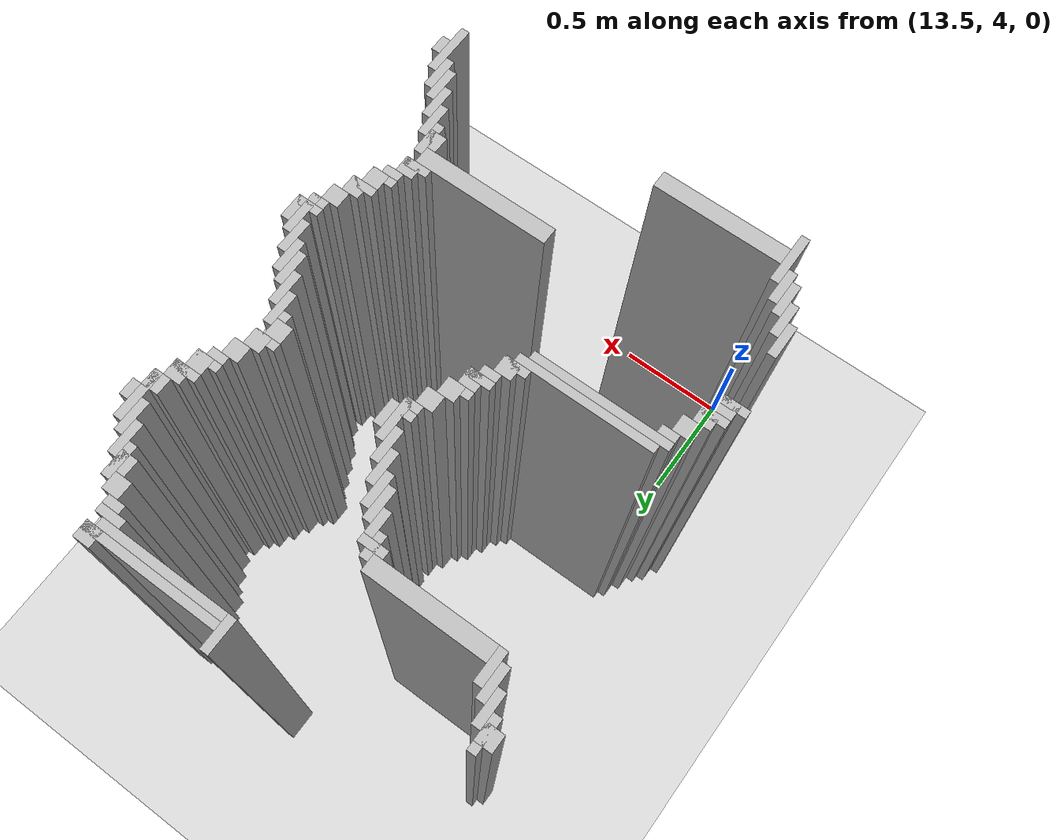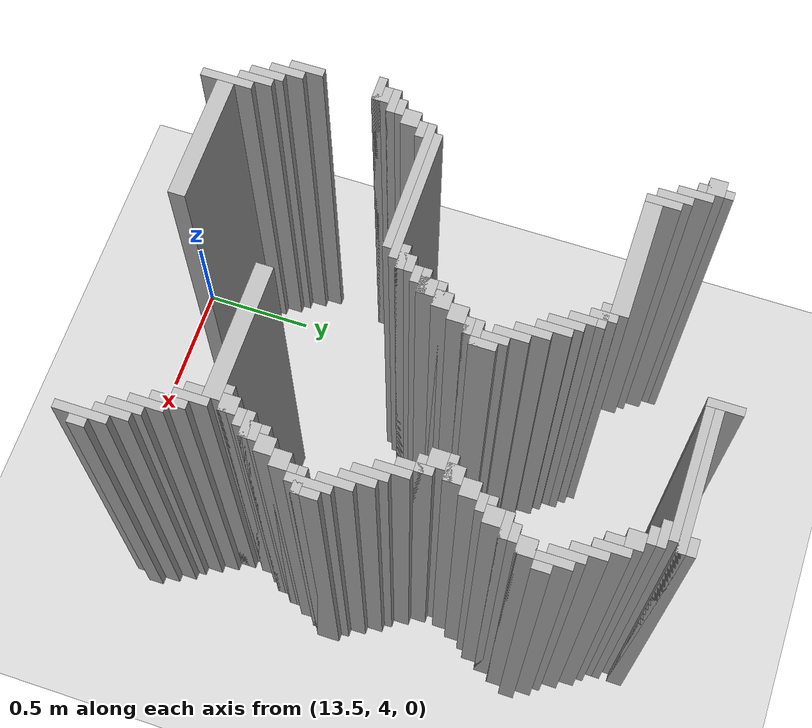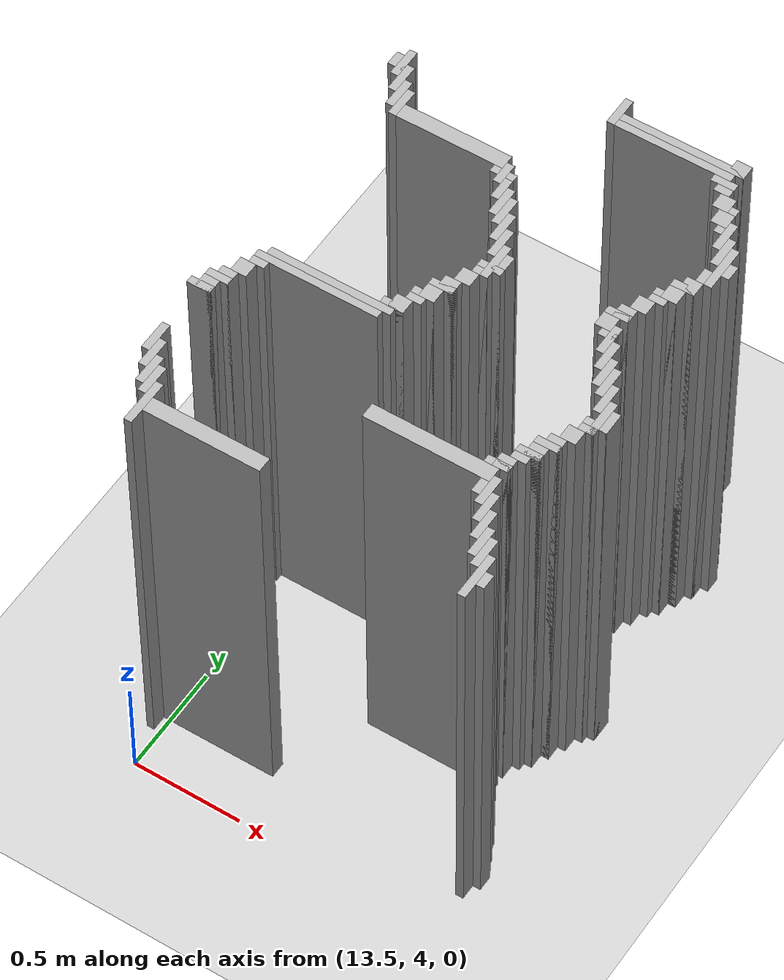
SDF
<sdf version="1.6">
 <world name="slam_world">
  <model name="ground_plane">
   <static>true</static>
   <link name="link">
    <collision name="collision">
     <geometry><plane><normal>0 0 1</normal><size>100 100</size></plane></geometry>
    </collision>
    <visual name="visual">
     <geometry><plane><normal>0 0 1</normal><size>100 100</size></plane></geometry>
     <material>
      <ambient>0.8 0.8 0.8 1</ambient>
      <diffuse>0.8 0.8 0.8 1</diffuse>
      <specular>0.8 0.8 0.8 1</specular>
     </material>
    </visual>
   </link>
  </model>
  <model name="wall_3584">
   <static>true</static>
   <pose>14.18213457076566 6.438515081206496 1.0 0 0 0</pose>
   <link name="link">
    <collision name="collision">
     <geometry><box><size>0.03480278422273782 0.13921113689095127 2.0</size></box></geometry>
    </collision>
    <visual name="visual">
     <geometry><box><size>0.03480278422273782 0.13921113689095127 2.0</size></box></geometry>
     <material><ambient>0.5 0.5 0.5 1</ambient><diffuse>0.7 0.7 0.7 1</diffuse></material>
    </visual>
   </link>
  </model>
  <model name="wall_3595">
   <static>true</static>
   <pose>14.721577726218097 6.438515081206496 1.0 0 0 0</pose>
   <link name="link">
    <collision name="collision">
     <geometry><box><size>0.06960556844547564 0.06960556844547564 2.0</size></box></geometry>
    </collision>
    <visual name="visual">
     <geometry><box><size>0.06960556844547564 0.06960556844547564 2.0</size></box></geometry>
     <material><ambient>0.5 0.5 0.5 1</ambient><diffuse>0.7 0.7 0.7 1</diffuse></material>
    </visual>
   </link>
  </model>
  <model name="wall_3609">
   <static>true</static>
   <pose>14.477958236658932 6.421113689095128 1.0 0 0 0</pose>
   <link name="link">
    <collision name="collision">
     <geometry><box><size>0.5568445475638051 0.03480278422273782 2.0</size></box></geometry>
    </collision>
    <visual name="visual">
     <geometry><box><size>0.5568445475638051 0.03480278422273782 2.0</size></box></geometry>
     <material><ambient>0.5 0.5 0.5 1</ambient><diffuse>0.7 0.7 0.7 1</diffuse></material>
    </visual>
   </link>
  </model>
  <model name="wall_3619">
   <static>true</static>
   <pose>14.460556844547563 6.386310904872389 1.0 0 0 0</pose>
   <link name="link">
    <collision name="collision">
     <geometry><box><size>0.5220417633410672 0.03480278422273782 2.0</size></box></geometry>
    </collision>
    <visual name="visual">
     <geometry><box><size>0.5220417633410672 0.03480278422273782 2.0</size></box></geometry>
     <material><ambient>0.5 0.5 0.5 1</ambient><diffuse>0.7 0.7 0.7 1</diffuse></material>
    </visual>
   </link>
  </model>
  <model name="wall_3632">
   <static>true</static>
   <pose>14.704176334106728 6.351508120649652 1.0 0 0 0</pose>
   <link name="link">
    <collision name="collision">
     <geometry><box><size>0.10440835266821345 0.03480278422273782 2.0</size></box></geometry>
    </collision>
    <visual name="visual">
     <geometry><box><size>0.10440835266821345 0.03480278422273782 2.0</size></box></geometry>
     <material><ambient>0.5 0.5 0.5 1</ambient><diffuse>0.7 0.7 0.7 1</diffuse></material>
    </visual>
   </link>
  </model>
  <model name="wall_3641">
   <static>true</static>
   <pose>14.721577726218097 6.316705336426914 1.0 0 0 0</pose>
   <link name="link">
    <collision name="collision">
     <geometry><box><size>0.06960556844547564 0.03480278422273782 2.0</size></box></geometry>
    </collision>
    <visual name="visual">
     <geometry><box><size>0.06960556844547564 0.03480278422273782 2.0</size></box></geometry>
     <material><ambient>0.5 0.5 0.5 1</ambient><diffuse>0.7 0.7 0.7 1</diffuse></material>
    </visual>
   </link>
  </model>
  <model name="wall_3654">
   <static>true</static>
   <pose>14.756380510440835 6.2645011600928076 1.0 0 0 0</pose>
   <link name="link">
    <collision name="collision">
     <geometry><box><size>0.06960556844547564 0.06960556844547564 2.0</size></box></geometry>
    </collision>
    <visual name="visual">
     <geometry><box><size>0.06960556844547564 0.06960556844547564 2.0</size></box></geometry>
     <material><ambient>0.5 0.5 0.5 1</ambient><diffuse>0.7 0.7 0.7 1</diffuse></material>
    </visual>
   </link>
  </model>
  <model name="wall_3666">
   <static>true</static>
   <pose>13.346867749419953 6.194895591647332 1.0 0 0 0</pose>
   <link name="link">
    <collision name="collision">
     <geometry><box><size>0.03480278422273782 0.13921113689095127 2.0</size></box></geometry>
    </collision>
    <visual name="visual">
     <geometry><box><size>0.03480278422273782 0.13921113689095127 2.0</size></box></geometry>
     <material><ambient>0.5 0.5 0.5 1</ambient><diffuse>0.7 0.7 0.7 1</diffuse></material>
    </visual>
   </link>
  </model>
  <model name="wall_3667">
   <static>true</static>
   <pose>14.80858468677494 6.194895591647332 1.0 0 0 0</pose>
   <link name="link">
    <collision name="collision">
     <geometry><box><size>0.03480278422273782 0.13921113689095127 2.0</size></box></geometry>
    </collision>
    <visual name="visual">
     <geometry><box><size>0.03480278422273782 0.13921113689095127 2.0</size></box></geometry>
     <material><ambient>0.5 0.5 0.5 1</ambient><diffuse>0.7 0.7 0.7 1</diffuse></material>
    </visual>
   </link>
  </model>
  <model name="wall_3679">
   <static>true</static>
   <pose>13.329466357308585 6.194895591647332 1.0 0 0 0</pose>
   <link name="link">
    <collision name="collision">
     <geometry><box><size>0.06960556844547564 0.06960556844547564 2.0</size></box></geometry>
    </collision>
    <visual name="visual">
     <geometry><box><size>0.06960556844547564 0.06960556844547564 2.0</size></box></geometry>
     <material><ambient>0.5 0.5 0.5 1</ambient><diffuse>0.7 0.7 0.7 1</diffuse></material>
    </visual>
   </link>
  </model>
  <model name="wall_3680">
   <static>true</static>
   <pose>14.791183294663572 6.194895591647332 1.0 0 0 0</pose>
   <link name="link">
    <collision name="collision">
     <geometry><box><size>0.06960556844547564 0.06960556844547564 2.0</size></box></geometry>
    </collision>
    <visual name="visual">
     <geometry><box><size>0.06960556844547564 0.06960556844547564 2.0</size></box></geometry>
     <material><ambient>0.5 0.5 0.5 1</ambient><diffuse>0.7 0.7 0.7 1</diffuse></material>
    </visual>
   </link>
  </model>
  <model name="wall_3692">
   <static>true</static>
   <pose>13.38167053364269 6.125290023201856 1.0 0 0 0</pose>
   <link name="link">
    <collision name="collision">
     <geometry><box><size>0.03480278422273782 0.13921113689095127 2.0</size></box></geometry>
    </collision>
    <visual name="visual">
     <geometry><box><size>0.03480278422273782 0.13921113689095127 2.0</size></box></geometry>
     <material><ambient>0.5 0.5 0.5 1</ambient><diffuse>0.7 0.7 0.7 1</diffuse></material>
    </visual>
   </link>
  </model>
  <model name="wall_3693">
   <static>true</static>
   <pose>14.84338747099768 6.125290023201856 1.0 0 0 0</pose>
   <link name="link">
    <collision name="collision">
     <geometry><box><size>0.03480278422273782 0.13921113689095127 2.0</size></box></geometry>
    </collision>
    <visual name="visual">
     <geometry><box><size>0.03480278422273782 0.13921113689095127 2.0</size></box></geometry>
     <material><ambient>0.5 0.5 0.5 1</ambient><diffuse>0.7 0.7 0.7 1</diffuse></material>
    </visual>
   </link>
  </model>
  <model name="wall_3710">
   <static>true</static>
   <pose>13.416473317865428 6.05568445475638 1.0 0 0 0</pose>
   <link name="link">
    <collision name="collision">
     <geometry><box><size>0.03480278422273782 0.13921113689095127 2.0</size></box></geometry>
    </collision>
    <visual name="visual">
     <geometry><box><size>0.03480278422273782 0.13921113689095127 2.0</size></box></geometry>
     <material><ambient>0.5 0.5 0.5 1</ambient><diffuse>0.7 0.7 0.7 1</diffuse></material>
    </visual>
   </link>
  </model>
  <model name="wall_3711">
   <static>true</static>
   <pose>14.878190255220417 6.05568445475638 1.0 0 0 0</pose>
   <link name="link">
    <collision name="collision">
     <geometry><box><size>0.03480278422273782 0.13921113689095127 2.0</size></box></geometry>
    </collision>
    <visual name="visual">
     <geometry><box><size>0.03480278422273782 0.13921113689095127 2.0</size></box></geometry>
     <material><ambient>0.5 0.5 0.5 1</ambient><diffuse>0.7 0.7 0.7 1</diffuse></material>
    </visual>
   </link>
  </model>
  <model name="wall_3723">
   <static>true</static>
   <pose>13.451276102088167 6.020881670533642 1.0 0 0 0</pose>
   <link name="link">
    <collision name="collision">
     <geometry><box><size>0.03480278422273782 0.13921113689095127 2.0</size></box></geometry>
    </collision>
    <visual name="visual">
     <geometry><box><size>0.03480278422273782 0.13921113689095127 2.0</size></box></geometry>
     <material><ambient>0.5 0.5 0.5 1</ambient><diffuse>0.7 0.7 0.7 1</diffuse></material>
    </visual>
   </link>
  </model>
  <model name="wall_3724">
   <static>true</static>
   <pose>14.912993039443155 5.986078886310905 1.0 0 0 0</pose>
   <link name="link">
    <collision name="collision">
     <geometry><box><size>0.03480278422273782 0.2088167053364269 2.0</size></box></geometry>
    </collision>
    <visual name="visual">
     <geometry><box><size>0.03480278422273782 0.2088167053364269 2.0</size></box></geometry>
     <material><ambient>0.5 0.5 0.5 1</ambient><diffuse>0.7 0.7 0.7 1</diffuse></material>
    </visual>
   </link>
  </model>
  <model name="wall_3740">
   <static>true</static>
   <pose>13.7122969837587 5.986078886310905 1.0 0 0 0</pose>
   <link name="link">
    <collision name="collision">
     <geometry><box><size>0.4872389791183295 0.06960556844547564 2.0</size></box></geometry>
    </collision>
    <visual name="visual">
     <geometry><box><size>0.4872389791183295 0.06960556844547564 2.0</size></box></geometry>
     <material><ambient>0.5 0.5 0.5 1</ambient><diffuse>0.7 0.7 0.7 1</diffuse></material>
    </visual>
   </link>
  </model>
  <model name="wall_3741">
   <static>true</static>
   <pose>14.947795823665892 5.986078886310905 1.0 0 0 0</pose>
   <link name="link">
    <collision name="collision">
     <geometry><box><size>0.03480278422273782 0.06960556844547564 2.0</size></box></geometry>
    </collision>
    <visual name="visual">
     <geometry><box><size>0.03480278422273782 0.06960556844547564 2.0</size></box></geometry>
     <material><ambient>0.5 0.5 0.5 1</ambient><diffuse>0.7 0.7 0.7 1</diffuse></material>
    </visual>
   </link>
  </model>
  <model name="wall_3751">
   <static>true</static>
   <pose>13.973317865429234 5.933874709976798 1.0 0 0 0</pose>
   <link name="link">
    <collision name="collision">
     <geometry><box><size>0.03480278422273782 0.10440835266821345 2.0</size></box></geometry>
    </collision>
    <visual name="visual">
     <geometry><box><size>0.03480278422273782 0.10440835266821345 2.0</size></box></geometry>
     <material><ambient>0.5 0.5 0.5 1</ambient><diffuse>0.7 0.7 0.7 1</diffuse></material>
    </visual>
   </link>
  </model>
  <model name="wall_3763">
   <static>true</static>
   <pose>13.973317865429234 5.933874709976798 1.0 0 0 0</pose>
   <link name="link">
    <collision name="collision">
     <geometry><box><size>0.10440835266821345 0.03480278422273782 2.0</size></box></geometry>
    </collision>
    <visual name="visual">
     <geometry><box><size>0.10440835266821345 0.03480278422273782 2.0</size></box></geometry>
     <material><ambient>0.5 0.5 0.5 1</ambient><diffuse>0.7 0.7 0.7 1</diffuse></material>
    </visual>
   </link>
  </model>
  <model name="wall_3764">
   <static>true</static>
   <pose>14.895591647331786 5.916473317865429 1.0 0 0 0</pose>
   <link name="link">
    <collision name="collision">
     <geometry><box><size>0.06960556844547564 0.06960556844547564 2.0</size></box></geometry>
    </collision>
    <visual name="visual">
     <geometry><box><size>0.06960556844547564 0.06960556844547564 2.0</size></box></geometry>
     <material><ambient>0.5 0.5 0.5 1</ambient><diffuse>0.7 0.7 0.7 1</diffuse></material>
    </visual>
   </link>
  </model>
  <model name="wall_3770">
   <static>true</static>
   <pose>14.008120649651971 5.864269141531322 1.0 0 0 0</pose>
   <link name="link">
    <collision name="collision">
     <geometry><box><size>0.03480278422273782 0.10440835266821345 2.0</size></box></geometry>
    </collision>
    <visual name="visual">
     <geometry><box><size>0.03480278422273782 0.10440835266821345 2.0</size></box></geometry>
     <material><ambient>0.5 0.5 0.5 1</ambient><diffuse>0.7 0.7 0.7 1</diffuse></material>
    </visual>
   </link>
  </model>
  <model name="wall_3782">
   <static>true</static>
   <pose>14.042923433874709 5.812064965197216 1.0 0 0 0</pose>
   <link name="link">
    <collision name="collision">
     <geometry><box><size>0.03480278422273782 0.13921113689095127 2.0</size></box></geometry>
    </collision>
    <visual name="visual">
     <geometry><box><size>0.03480278422273782 0.13921113689095127 2.0</size></box></geometry>
     <material><ambient>0.5 0.5 0.5 1</ambient><diffuse>0.7 0.7 0.7 1</diffuse></material>
    </visual>
   </link>
  </model>
  <model name="wall_3783">
   <static>true</static>
   <pose>14.860788863109049 5.846867749419953 1.0 0 0 0</pose>
   <link name="link">
    <collision name="collision">
     <geometry><box><size>0.06960556844547564 0.06960556844547564 2.0</size></box></geometry>
    </collision>
    <visual name="visual">
     <geometry><box><size>0.06960556844547564 0.06960556844547564 2.0</size></box></geometry>
     <material><ambient>0.5 0.5 0.5 1</ambient><diffuse>0.7 0.7 0.7 1</diffuse></material>
    </visual>
   </link>
  </model>
  <model name="wall_3795">
   <static>true</static>
   <pose>14.077726218097448 5.7772621809744775 1.0 0 0 0</pose>
   <link name="link">
    <collision name="collision">
     <geometry><box><size>0.03480278422273782 0.13921113689095127 2.0</size></box></geometry>
    </collision>
    <visual name="visual">
     <geometry><box><size>0.03480278422273782 0.13921113689095127 2.0</size></box></geometry>
     <material><ambient>0.5 0.5 0.5 1</ambient><diffuse>0.7 0.7 0.7 1</diffuse></material>
    </visual>
   </link>
  </model>
  <model name="wall_3796">
   <static>true</static>
   <pose>14.84338747099768 5.8294663573085845 1.0 0 0 0</pose>
   <link name="link">
    <collision name="collision">
     <geometry><box><size>0.10440835266821345 0.03480278422273782 2.0</size></box></geometry>
    </collision>
    <visual name="visual">
     <geometry><box><size>0.10440835266821345 0.03480278422273782 2.0</size></box></geometry>
     <material><ambient>0.5 0.5 0.5 1</ambient><diffuse>0.7 0.7 0.7 1</diffuse></material>
    </visual>
   </link>
  </model>
  <model name="wall_3808">
   <static>true</static>
   <pose>14.825986078886311 5.7772621809744775 1.0 0 0 0</pose>
   <link name="link">
    <collision name="collision">
     <geometry><box><size>0.06960556844547564 0.06960556844547564 2.0</size></box></geometry>
    </collision>
    <visual name="visual">
     <geometry><box><size>0.06960556844547564 0.06960556844547564 2.0</size></box></geometry>
     <material><ambient>0.5 0.5 0.5 1</ambient><diffuse>0.7 0.7 0.7 1</diffuse></material>
    </visual>
   </link>
  </model>
  <model name="wall_3820">
   <static>true</static>
   <pose>14.112529002320185 5.707656612529002 1.0 0 0 0</pose>
   <link name="link">
    <collision name="collision">
     <geometry><box><size>0.03480278422273782 0.13921113689095127 2.0</size></box></geometry>
    </collision>
    <visual name="visual">
     <geometry><box><size>0.03480278422273782 0.13921113689095127 2.0</size></box></geometry>
     <material><ambient>0.5 0.5 0.5 1</ambient><diffuse>0.7 0.7 0.7 1</diffuse></material>
    </visual>
   </link>
  </model>
  <model name="wall_3821">
   <static>true</static>
   <pose>14.80858468677494 5.759860788863109 1.0 0 0 0</pose>
   <link name="link">
    <collision name="collision">
     <geometry><box><size>0.10440835266821345 0.03480278422273782 2.0</size></box></geometry>
    </collision>
    <visual name="visual">
     <geometry><box><size>0.10440835266821345 0.03480278422273782 2.0</size></box></geometry>
     <material><ambient>0.5 0.5 0.5 1</ambient><diffuse>0.7 0.7 0.7 1</diffuse></material>
    </visual>
   </link>
  </model>
  <model name="wall_3827">
   <static>true</static>
   <pose>14.791183294663572 5.725058004640371 1.0 0 0 0</pose>
   <link name="link">
    <collision name="collision">
     <geometry><box><size>0.06960556844547564 0.03480278422273782 2.0</size></box></geometry>
    </collision>
    <visual name="visual">
     <geometry><box><size>0.06960556844547564 0.03480278422273782 2.0</size></box></geometry>
     <material><ambient>0.5 0.5 0.5 1</ambient><diffuse>0.7 0.7 0.7 1</diffuse></material>
    </visual>
   </link>
  </model>
  <model name="wall_3839">
   <static>true</static>
   <pose>14.147331786542923 5.638051044083526 1.0 0 0 0</pose>
   <link name="link">
    <collision name="collision">
     <geometry><box><size>0.03480278422273782 0.13921113689095127 2.0</size></box></geometry>
    </collision>
    <visual name="visual">
     <geometry><box><size>0.03480278422273782 0.13921113689095127 2.0</size></box></geometry>
     <material><ambient>0.5 0.5 0.5 1</ambient><diffuse>0.7 0.7 0.7 1</diffuse></material>
    </visual>
   </link>
  </model>
  <model name="wall_3840">
   <static>true</static>
   <pose>14.756380510440835 5.672853828306264 1.0 0 0 0</pose>
   <link name="link">
    <collision name="collision">
     <geometry><box><size>0.06960556844547564 0.06960556844547564 2.0</size></box></geometry>
    </collision>
    <visual name="visual">
     <geometry><box><size>0.06960556844547564 0.06960556844547564 2.0</size></box></geometry>
     <material><ambient>0.5 0.5 0.5 1</ambient><diffuse>0.7 0.7 0.7 1</diffuse></material>
    </visual>
   </link>
  </model>
  <model name="wall_3852">
   <static>true</static>
   <pose>14.18213457076566 5.551044083526682 1.0 0 0 0</pose>
   <link name="link">
    <collision name="collision">
     <geometry><box><size>0.03480278422273782 0.17401392111368907 2.0</size></box></geometry>
    </collision>
    <visual name="visual">
     <geometry><box><size>0.03480278422273782 0.17401392111368907 2.0</size></box></geometry>
     <material><ambient>0.5 0.5 0.5 1</ambient><diffuse>0.7 0.7 0.7 1</diffuse></material>
    </visual>
   </link>
  </model>
  <model name="wall_3853">
   <static>true</static>
   <pose>14.721577726218097 5.603248259860789 1.0 0 0 0</pose>
   <link name="link">
    <collision name="collision">
     <geometry><box><size>0.06960556844547564 0.06960556844547564 2.0</size></box></geometry>
    </collision>
    <visual name="visual">
     <geometry><box><size>0.06960556844547564 0.06960556844547564 2.0</size></box></geometry>
     <material><ambient>0.5 0.5 0.5 1</ambient><diffuse>0.7 0.7 0.7 1</diffuse></material>
    </visual>
   </link>
  </model>
  <model name="wall_3866">
   <static>true</static>
   <pose>14.2169373549884 5.551044083526682 1.0 0 0 0</pose>
   <link name="link">
    <collision name="collision">
     <geometry><box><size>0.03480278422273782 0.10440835266821345 2.0</size></box></geometry>
    </collision>
    <visual name="visual">
     <geometry><box><size>0.03480278422273782 0.10440835266821345 2.0</size></box></geometry>
     <material><ambient>0.5 0.5 0.5 1</ambient><diffuse>0.7 0.7 0.7 1</diffuse></material>
    </visual>
   </link>
  </model>
  <model name="wall_3867">
   <static>true</static>
   <pose>14.704176334106728 5.58584686774942 1.0 0 0 0</pose>
   <link name="link">
    <collision name="collision">
     <geometry><box><size>0.10440835266821345 0.03480278422273782 2.0</size></box></geometry>
    </collision>
    <visual name="visual">
     <geometry><box><size>0.10440835266821345 0.03480278422273782 2.0</size></box></geometry>
     <material><ambient>0.5 0.5 0.5 1</ambient><diffuse>0.7 0.7 0.7 1</diffuse></material>
    </visual>
   </link>
  </model>
  <model name="wall_3878">
   <static>true</static>
   <pose>14.68677494199536 5.533642691415313 1.0 0 0 0</pose>
   <link name="link">
    <collision name="collision">
     <geometry><box><size>0.06960556844547564 0.06960556844547564 2.0</size></box></geometry>
    </collision>
    <visual name="visual">
     <geometry><box><size>0.06960556844547564 0.06960556844547564 2.0</size></box></geometry>
     <material><ambient>0.5 0.5 0.5 1</ambient><diffuse>0.7 0.7 0.7 1</diffuse></material>
    </visual>
   </link>
  </model>
  <model name="wall_3892">
   <static>true</static>
   <pose>14.18213457076566 5.516241299303944 1.0 0 0 0</pose>
   <link name="link">
    <collision name="collision">
     <geometry><box><size>0.10440835266821345 0.03480278422273782 2.0</size></box></geometry>
    </collision>
    <visual name="visual">
     <geometry><box><size>0.10440835266821345 0.03480278422273782 2.0</size></box></geometry>
     <material><ambient>0.5 0.5 0.5 1</ambient><diffuse>0.7 0.7 0.7 1</diffuse></material>
    </visual>
   </link>
  </model>
  <model name="wall_3893">
   <static>true</static>
   <pose>14.738979118329466 5.464037122969837 1.0 0 0 0</pose>
   <link name="link">
    <collision name="collision">
     <geometry><box><size>0.03480278422273782 0.13921113689095127 2.0</size></box></geometry>
    </collision>
    <visual name="visual">
     <geometry><box><size>0.03480278422273782 0.13921113689095127 2.0</size></box></geometry>
     <material><ambient>0.5 0.5 0.5 1</ambient><diffuse>0.7 0.7 0.7 1</diffuse></material>
    </visual>
   </link>
  </model>
  <model name="wall_3905">
   <static>true</static>
   <pose>14.164733178654291 5.481438515081206 1.0 0 0 0</pose>
   <link name="link">
    <collision name="collision">
     <geometry><box><size>0.06960556844547564 0.03480278422273782 2.0</size></box></geometry>
    </collision>
    <visual name="visual">
     <geometry><box><size>0.06960556844547564 0.03480278422273782 2.0</size></box></geometry>
     <material><ambient>0.5 0.5 0.5 1</ambient><diffuse>0.7 0.7 0.7 1</diffuse></material>
    </visual>
   </link>
  </model>
  <model name="wall_3906">
   <static>true</static>
   <pose>14.721577726218097 5.481438515081206 1.0 0 0 0</pose>
   <link name="link">
    <collision name="collision">
     <geometry><box><size>0.06960556844547564 0.03480278422273782 2.0</size></box></geometry>
    </collision>
    <visual name="visual">
     <geometry><box><size>0.06960556844547564 0.03480278422273782 2.0</size></box></geometry>
     <material><ambient>0.5 0.5 0.5 1</ambient><diffuse>0.7 0.7 0.7 1</diffuse></material>
    </visual>
   </link>
  </model>
  <model name="wall_3918">
   <static>true</static>
   <pose>14.129930394431554 5.4292343387471 1.0 0 0 0</pose>
   <link name="link">
    <collision name="collision">
     <geometry><box><size>0.06960556844547564 0.06960556844547564 2.0</size></box></geometry>
    </collision>
    <visual name="visual">
     <geometry><box><size>0.06960556844547564 0.06960556844547564 2.0</size></box></geometry>
     <material><ambient>0.5 0.5 0.5 1</ambient><diffuse>0.7 0.7 0.7 1</diffuse></material>
    </visual>
   </link>
  </model>
  <model name="wall_3919">
   <static>true</static>
   <pose>14.773781902552203 5.3944315545243615 1.0 0 0 0</pose>
   <link name="link">
    <collision name="collision">
     <geometry><box><size>0.03480278422273782 0.13921113689095127 2.0</size></box></geometry>
    </collision>
    <visual name="visual">
     <geometry><box><size>0.03480278422273782 0.13921113689095127 2.0</size></box></geometry>
     <material><ambient>0.5 0.5 0.5 1</ambient><diffuse>0.7 0.7 0.7 1</diffuse></material>
    </visual>
   </link>
  </model>
  <model name="wall_3931">
   <static>true</static>
   <pose>14.095127610208817 5.359628770301624 1.0 0 0 0</pose>
   <link name="link">
    <collision name="collision">
     <geometry><box><size>0.06960556844547564 0.06960556844547564 2.0</size></box></geometry>
    </collision>
    <visual name="visual">
     <geometry><box><size>0.06960556844547564 0.06960556844547564 2.0</size></box></geometry>
     <material><ambient>0.5 0.5 0.5 1</ambient><diffuse>0.7 0.7 0.7 1</diffuse></material>
    </visual>
   </link>
  </model>
  <model name="wall_3932">
   <static>true</static>
   <pose>14.80858468677494 5.324825986078886 1.0 0 0 0</pose>
   <link name="link">
    <collision name="collision">
     <geometry><box><size>0.03480278422273782 0.13921113689095127 2.0</size></box></geometry>
    </collision>
    <visual name="visual">
     <geometry><box><size>0.03480278422273782 0.13921113689095127 2.0</size></box></geometry>
     <material><ambient>0.5 0.5 0.5 1</ambient><diffuse>0.7 0.7 0.7 1</diffuse></material>
    </visual>
   </link>
  </model>
  <model name="wall_3944">
   <static>true</static>
   <pose>14.077726218097448 5.342227378190255 1.0 0 0 0</pose>
   <link name="link">
    <collision name="collision">
     <geometry><box><size>0.10440835266821345 0.03480278422273782 2.0</size></box></geometry>
    </collision>
    <visual name="visual">
     <geometry><box><size>0.10440835266821345 0.03480278422273782 2.0</size></box></geometry>
     <material><ambient>0.5 0.5 0.5 1</ambient><diffuse>0.7 0.7 0.7 1</diffuse></material>
    </visual>
   </link>
  </model>
  <model name="wall_3945">
   <static>true</static>
   <pose>14.84338747099768 5.290023201856148 1.0 0 0 0</pose>
   <link name="link">
    <collision name="collision">
     <geometry><box><size>0.03480278422273782 0.13921113689095127 2.0</size></box></geometry>
    </collision>
    <visual name="visual">
     <geometry><box><size>0.03480278422273782 0.13921113689095127 2.0</size></box></geometry>
     <material><ambient>0.5 0.5 0.5 1</ambient><diffuse>0.7 0.7 0.7 1</diffuse></material>
    </visual>
   </link>
  </model>
  <model name="wall_3953">
   <static>true</static>
   <pose>14.06032482598608 5.290023201856148 1.0 0 0 0</pose>
   <link name="link">
    <collision name="collision">
     <geometry><box><size>0.06960556844547564 0.06960556844547564 2.0</size></box></geometry>
    </collision>
    <visual name="visual">
     <geometry><box><size>0.06960556844547564 0.06960556844547564 2.0</size></box></geometry>
     <material><ambient>0.5 0.5 0.5 1</ambient><diffuse>0.7 0.7 0.7 1</diffuse></material>
    </visual>
   </link>
  </model>
  <model name="wall_3965">
   <static>true</static>
   <pose>14.042923433874709 5.27262180974478 1.0 0 0 0</pose>
   <link name="link">
    <collision name="collision">
     <geometry><box><size>0.10440835266821345 0.03480278422273782 2.0</size></box></geometry>
    </collision>
    <visual name="visual">
     <geometry><box><size>0.10440835266821345 0.03480278422273782 2.0</size></box></geometry>
     <material><ambient>0.5 0.5 0.5 1</ambient><diffuse>0.7 0.7 0.7 1</diffuse></material>
    </visual>
   </link>
  </model>
  <model name="wall_3966">
   <static>true</static>
   <pose>14.878190255220417 5.220417633410673 1.0 0 0 0</pose>
   <link name="link">
    <collision name="collision">
     <geometry><box><size>0.03480278422273782 0.13921113689095127 2.0</size></box></geometry>
    </collision>
    <visual name="visual">
     <geometry><box><size>0.03480278422273782 0.13921113689095127 2.0</size></box></geometry>
     <material><ambient>0.5 0.5 0.5 1</ambient><diffuse>0.7 0.7 0.7 1</diffuse></material>
    </visual>
   </link>
  </model>
  <model name="wall_3973">
   <static>true</static>
   <pose>14.02552204176334 5.237819025522041 1.0 0 0 0</pose>
   <link name="link">
    <collision name="collision">
     <geometry><box><size>0.06960556844547564 0.03480278422273782 2.0</size></box></geometry>
    </collision>
    <visual name="visual">
     <geometry><box><size>0.06960556844547564 0.03480278422273782 2.0</size></box></geometry>
     <material><ambient>0.5 0.5 0.5 1</ambient><diffuse>0.7 0.7 0.7 1</diffuse></material>
    </visual>
   </link>
  </model>
  <model name="wall_3985">
   <static>true</static>
   <pose>13.990719257540603 5.185614849187935 1.0 0 0 0</pose>
   <link name="link">
    <collision name="collision">
     <geometry><box><size>0.06960556844547564 0.06960556844547564 2.0</size></box></geometry>
    </collision>
    <visual name="visual">
     <geometry><box><size>0.06960556844547564 0.06960556844547564 2.0</size></box></geometry>
     <material><ambient>0.5 0.5 0.5 1</ambient><diffuse>0.7 0.7 0.7 1</diffuse></material>
    </visual>
   </link>
  </model>
  <model name="wall_3986">
   <static>true</static>
   <pose>14.912993039443155 5.133410672853828 1.0 0 0 0</pose>
   <link name="link">
    <collision name="collision">
     <geometry><box><size>0.03480278422273782 0.17401392111368907 2.0</size></box></geometry>
    </collision>
    <visual name="visual">
     <geometry><box><size>0.03480278422273782 0.17401392111368907 2.0</size></box></geometry>
     <material><ambient>0.5 0.5 0.5 1</ambient><diffuse>0.7 0.7 0.7 1</diffuse></material>
    </visual>
   </link>
  </model>
  <model name="wall_3998">
   <static>true</static>
   <pose>13.973317865429234 5.168213457076566 1.0 0 0 0</pose>
   <link name="link">
    <collision name="collision">
     <geometry><box><size>0.10440835266821345 0.03480278422273782 2.0</size></box></geometry>
    </collision>
    <visual name="visual">
     <geometry><box><size>0.10440835266821345 0.03480278422273782 2.0</size></box></geometry>
     <material><ambient>0.5 0.5 0.5 1</ambient><diffuse>0.7 0.7 0.7 1</diffuse></material>
    </visual>
   </link>
  </model>
  <model name="wall_3999">
   <static>true</static>
   <pose>14.947795823665892 5.133410672853828 1.0 0 0 0</pose>
   <link name="link">
    <collision name="collision">
     <geometry><box><size>0.03480278422273782 0.10440835266821345 2.0</size></box></geometry>
    </collision>
    <visual name="visual">
     <geometry><box><size>0.03480278422273782 0.10440835266821345 2.0</size></box></geometry>
     <material><ambient>0.5 0.5 0.5 1</ambient><diffuse>0.7 0.7 0.7 1</diffuse></material>
    </visual>
   </link>
  </model>
  <model name="wall_4009">
   <static>true</static>
   <pose>13.7122969837587 5.133410672853828 1.0 0 0 0</pose>
   <link name="link">
    <collision name="collision">
     <geometry><box><size>0.5568445475638051 0.03480278422273782 2.0</size></box></geometry>
    </collision>
    <visual name="visual">
     <geometry><box><size>0.5568445475638051 0.03480278422273782 2.0</size></box></geometry>
     <material><ambient>0.5 0.5 0.5 1</ambient><diffuse>0.7 0.7 0.7 1</diffuse></material>
    </visual>
   </link>
  </model>
  <model name="wall_4020">
   <static>true</static>
   <pose>13.677494199535962 5.09860788863109 1.0 0 0 0</pose>
   <link name="link">
    <collision name="collision">
     <geometry><box><size>0.5568445475638051 0.03480278422273782 2.0</size></box></geometry>
    </collision>
    <visual name="visual">
     <geometry><box><size>0.5568445475638051 0.03480278422273782 2.0</size></box></geometry>
     <material><ambient>0.5 0.5 0.5 1</ambient><diffuse>0.7 0.7 0.7 1</diffuse></material>
    </visual>
   </link>
  </model>
  <model name="wall_4021">
   <static>true</static>
   <pose>14.912993039443155 5.09860788863109 1.0 0 0 0</pose>
   <link name="link">
    <collision name="collision">
     <geometry><box><size>0.10440835266821345 0.03480278422273782 2.0</size></box></geometry>
    </collision>
    <visual name="visual">
     <geometry><box><size>0.10440835266821345 0.03480278422273782 2.0</size></box></geometry>
     <material><ambient>0.5 0.5 0.5 1</ambient><diffuse>0.7 0.7 0.7 1</diffuse></material>
    </visual>
   </link>
  </model>
  <model name="wall_4035">
   <static>true</static>
   <pose>13.433874709976797 5.0638051044083525 1.0 0 0 0</pose>
   <link name="link">
    <collision name="collision">
     <geometry><box><size>0.06960556844547564 0.03480278422273782 2.0</size></box></geometry>
    </collision>
    <visual name="visual">
     <geometry><box><size>0.06960556844547564 0.03480278422273782 2.0</size></box></geometry>
     <material><ambient>0.5 0.5 0.5 1</ambient><diffuse>0.7 0.7 0.7 1</diffuse></material>
    </visual>
   </link>
  </model>
  <model name="wall_4036">
   <static>true</static>
   <pose>14.895591647331786 5.0638051044083525 1.0 0 0 0</pose>
   <link name="link">
    <collision name="collision">
     <geometry><box><size>0.06960556844547564 0.03480278422273782 2.0</size></box></geometry>
    </collision>
    <visual name="visual">
     <geometry><box><size>0.06960556844547564 0.03480278422273782 2.0</size></box></geometry>
     <material><ambient>0.5 0.5 0.5 1</ambient><diffuse>0.7 0.7 0.7 1</diffuse></material>
    </visual>
   </link>
  </model>
  <model name="wall_4050">
   <static>true</static>
   <pose>13.39907192575406 5.0116009280742455 1.0 0 0 0</pose>
   <link name="link">
    <collision name="collision">
     <geometry><box><size>0.06960556844547564 0.06960556844547564 2.0</size></box></geometry>
    </collision>
    <visual name="visual">
     <geometry><box><size>0.06960556844547564 0.06960556844547564 2.0</size></box></geometry>
     <material><ambient>0.5 0.5 0.5 1</ambient><diffuse>0.7 0.7 0.7 1</diffuse></material>
    </visual>
   </link>
  </model>
  <model name="wall_4051">
   <static>true</static>
   <pose>14.860788863109049 5.0116009280742455 1.0 0 0 0</pose>
   <link name="link">
    <collision name="collision">
     <geometry><box><size>0.06960556844547564 0.06960556844547564 2.0</size></box></geometry>
    </collision>
    <visual name="visual">
     <geometry><box><size>0.06960556844547564 0.06960556844547564 2.0</size></box></geometry>
     <material><ambient>0.5 0.5 0.5 1</ambient><diffuse>0.7 0.7 0.7 1</diffuse></material>
    </visual>
   </link>
  </model>
  <model name="wall_4065">
   <static>true</static>
   <pose>13.364269141531322 4.94199535962877 1.0 0 0 0</pose>
   <link name="link">
    <collision name="collision">
     <geometry><box><size>0.06960556844547564 0.06960556844547564 2.0</size></box></geometry>
    </collision>
    <visual name="visual">
     <geometry><box><size>0.06960556844547564 0.06960556844547564 2.0</size></box></geometry>
     <material><ambient>0.5 0.5 0.5 1</ambient><diffuse>0.7 0.7 0.7 1</diffuse></material>
    </visual>
   </link>
  </model>
  <model name="wall_4066">
   <static>true</static>
   <pose>14.825986078886311 4.94199535962877 1.0 0 0 0</pose>
   <link name="link">
    <collision name="collision">
     <geometry><box><size>0.06960556844547564 0.06960556844547564 2.0</size></box></geometry>
    </collision>
    <visual name="visual">
     <geometry><box><size>0.06960556844547564 0.06960556844547564 2.0</size></box></geometry>
     <material><ambient>0.5 0.5 0.5 1</ambient><diffuse>0.7 0.7 0.7 1</diffuse></material>
    </visual>
   </link>
  </model>
  <model name="wall_4080">
   <static>true</static>
   <pose>13.346867749419953 4.924593967517401 1.0 0 0 0</pose>
   <link name="link">
    <collision name="collision">
     <geometry><box><size>0.10440835266821345 0.03480278422273782 2.0</size></box></geometry>
    </collision>
    <visual name="visual">
     <geometry><box><size>0.10440835266821345 0.03480278422273782 2.0</size></box></geometry>
     <material><ambient>0.5 0.5 0.5 1</ambient><diffuse>0.7 0.7 0.7 1</diffuse></material>
    </visual>
   </link>
  </model>
  <model name="wall_4081">
   <static>true</static>
   <pose>14.80858468677494 4.924593967517401 1.0 0 0 0</pose>
   <link name="link">
    <collision name="collision">
     <geometry><box><size>0.10440835266821345 0.03480278422273782 2.0</size></box></geometry>
    </collision>
    <visual name="visual">
     <geometry><box><size>0.10440835266821345 0.03480278422273782 2.0</size></box></geometry>
     <material><ambient>0.5 0.5 0.5 1</ambient><diffuse>0.7 0.7 0.7 1</diffuse></material>
    </visual>
   </link>
  </model>
  <model name="wall_4093">
   <static>true</static>
   <pose>13.329466357308585 4.872389791183294 1.0 0 0 0</pose>
   <link name="link">
    <collision name="collision">
     <geometry><box><size>0.06960556844547564 0.06960556844547564 2.0</size></box></geometry>
    </collision>
    <visual name="visual">
     <geometry><box><size>0.06960556844547564 0.06960556844547564 2.0</size></box></geometry>
     <material><ambient>0.5 0.5 0.5 1</ambient><diffuse>0.7 0.7 0.7 1</diffuse></material>
    </visual>
   </link>
  </model>
  <model name="wall_4094">
   <static>true</static>
   <pose>14.791183294663572 4.872389791183294 1.0 0 0 0</pose>
   <link name="link">
    <collision name="collision">
     <geometry><box><size>0.06960556844547564 0.06960556844547564 2.0</size></box></geometry>
    </collision>
    <visual name="visual">
     <geometry><box><size>0.06960556844547564 0.06960556844547564 2.0</size></box></geometry>
     <material><ambient>0.5 0.5 0.5 1</ambient><diffuse>0.7 0.7 0.7 1</diffuse></material>
    </visual>
   </link>
  </model>
  <model name="wall_4108">
   <static>true</static>
   <pose>13.312064965197216 4.854988399071925 1.0 0 0 0</pose>
   <link name="link">
    <collision name="collision">
     <geometry><box><size>0.10440835266821345 0.03480278422273782 2.0</size></box></geometry>
    </collision>
    <visual name="visual">
     <geometry><box><size>0.10440835266821345 0.03480278422273782 2.0</size></box></geometry>
     <material><ambient>0.5 0.5 0.5 1</ambient><diffuse>0.7 0.7 0.7 1</diffuse></material>
    </visual>
   </link>
  </model>
  <model name="wall_4109">
   <static>true</static>
   <pose>14.773781902552203 4.854988399071925 1.0 0 0 0</pose>
   <link name="link">
    <collision name="collision">
     <geometry><box><size>0.10440835266821345 0.03480278422273782 2.0</size></box></geometry>
    </collision>
    <visual name="visual">
     <geometry><box><size>0.10440835266821345 0.03480278422273782 2.0</size></box></geometry>
     <material><ambient>0.5 0.5 0.5 1</ambient><diffuse>0.7 0.7 0.7 1</diffuse></material>
    </visual>
   </link>
  </model>
  <model name="wall_4117">
   <static>true</static>
   <pose>14.756380510440835 4.820185614849188 1.0 0 0 0</pose>
   <link name="link">
    <collision name="collision">
     <geometry><box><size>0.06960556844547564 0.03480278422273782 2.0</size></box></geometry>
    </collision>
    <visual name="visual">
     <geometry><box><size>0.06960556844547564 0.03480278422273782 2.0</size></box></geometry>
     <material><ambient>0.5 0.5 0.5 1</ambient><diffuse>0.7 0.7 0.7 1</diffuse></material>
    </visual>
   </link>
  </model>
  <model name="wall_4132">
   <static>true</static>
   <pose>14.721577726218097 4.767981438515081 1.0 0 0 0</pose>
   <link name="link">
    <collision name="collision">
     <geometry><box><size>0.06960556844547564 0.06960556844547564 2.0</size></box></geometry>
    </collision>
    <visual name="visual">
     <geometry><box><size>0.06960556844547564 0.06960556844547564 2.0</size></box></geometry>
     <material><ambient>0.5 0.5 0.5 1</ambient><diffuse>0.7 0.7 0.7 1</diffuse></material>
    </visual>
   </link>
  </model>
  <model name="wall_4146">
   <static>true</static>
   <pose>14.704176334106728 4.750580046403712 1.0 0 0 0</pose>
   <link name="link">
    <collision name="collision">
     <geometry><box><size>0.10440835266821345 0.03480278422273782 2.0</size></box></geometry>
    </collision>
    <visual name="visual">
     <geometry><box><size>0.10440835266821345 0.03480278422273782 2.0</size></box></geometry>
     <material><ambient>0.5 0.5 0.5 1</ambient><diffuse>0.7 0.7 0.7 1</diffuse></material>
    </visual>
   </link>
  </model>
  <model name="wall_4158">
   <static>true</static>
   <pose>14.443155452436194 4.698375870069605 1.0 0 0 0</pose>
   <link name="link">
    <collision name="collision">
     <geometry><box><size>0.5568445475638051 0.06960556844547564 2.0</size></box></geometry>
    </collision>
    <visual name="visual">
     <geometry><box><size>0.5568445475638051 0.06960556844547564 2.0</size></box></geometry>
     <material><ambient>0.5 0.5 0.5 1</ambient><diffuse>0.7 0.7 0.7 1</diffuse></material>
    </visual>
   </link>
  </model>
  <model name="wall_4172">
   <static>true</static>
   <pose>14.738979118329466 4.6287703016241295 1.0 0 0 0</pose>
   <link name="link">
    <collision name="collision">
     <geometry><box><size>0.03480278422273782 0.13921113689095127 2.0</size></box></geometry>
    </collision>
    <visual name="visual">
     <geometry><box><size>0.03480278422273782 0.13921113689095127 2.0</size></box></geometry>
     <material><ambient>0.5 0.5 0.5 1</ambient><diffuse>0.7 0.7 0.7 1</diffuse></material>
    </visual>
   </link>
  </model>
  <model name="wall_4187">
   <static>true</static>
   <pose>14.721577726218097 4.6287703016241295 1.0 0 0 0</pose>
   <link name="link">
    <collision name="collision">
     <geometry><box><size>0.06960556844547564 0.06960556844547564 2.0</size></box></geometry>
    </collision>
    <visual name="visual">
     <geometry><box><size>0.06960556844547564 0.06960556844547564 2.0</size></box></geometry>
     <material><ambient>0.5 0.5 0.5 1</ambient><diffuse>0.7 0.7 0.7 1</diffuse></material>
    </visual>
   </link>
  </model>
  <model name="wall_4201">
   <static>true</static>
   <pose>13.312064965197216 4.559164733178654 1.0 0 0 0</pose>
   <link name="link">
    <collision name="collision">
     <geometry><box><size>0.03480278422273782 0.13921113689095127 2.0</size></box></geometry>
    </collision>
    <visual name="visual">
     <geometry><box><size>0.03480278422273782 0.13921113689095127 2.0</size></box></geometry>
     <material><ambient>0.5 0.5 0.5 1</ambient><diffuse>0.7 0.7 0.7 1</diffuse></material>
    </visual>
   </link>
  </model>
  <model name="wall_4202">
   <static>true</static>
   <pose>14.773781902552203 4.559164733178654 1.0 0 0 0</pose>
   <link name="link">
    <collision name="collision">
     <geometry><box><size>0.03480278422273782 0.13921113689095127 2.0</size></box></geometry>
    </collision>
    <visual name="visual">
     <geometry><box><size>0.03480278422273782 0.13921113689095127 2.0</size></box></geometry>
     <material><ambient>0.5 0.5 0.5 1</ambient><diffuse>0.7 0.7 0.7 1</diffuse></material>
    </visual>
   </link>
  </model>
  <model name="wall_4223">
   <static>true</static>
   <pose>13.346867749419953 4.489559164733178 1.0 0 0 0</pose>
   <link name="link">
    <collision name="collision">
     <geometry><box><size>0.03480278422273782 0.13921113689095127 2.0</size></box></geometry>
    </collision>
    <visual name="visual">
     <geometry><box><size>0.03480278422273782 0.13921113689095127 2.0</size></box></geometry>
     <material><ambient>0.5 0.5 0.5 1</ambient><diffuse>0.7 0.7 0.7 1</diffuse></material>
    </visual>
   </link>
  </model>
  <model name="wall_4224">
   <static>true</static>
   <pose>14.80858468677494 4.489559164733178 1.0 0 0 0</pose>
   <link name="link">
    <collision name="collision">
     <geometry><box><size>0.03480278422273782 0.13921113689095127 2.0</size></box></geometry>
    </collision>
    <visual name="visual">
     <geometry><box><size>0.03480278422273782 0.13921113689095127 2.0</size></box></geometry>
     <material><ambient>0.5 0.5 0.5 1</ambient><diffuse>0.7 0.7 0.7 1</diffuse></material>
    </visual>
   </link>
  </model>
  <model name="wall_4238">
   <static>true</static>
   <pose>13.38167053364269 4.419953596287703 1.0 0 0 0</pose>
   <link name="link">
    <collision name="collision">
     <geometry><box><size>0.03480278422273782 0.13921113689095127 2.0</size></box></geometry>
    </collision>
    <visual name="visual">
     <geometry><box><size>0.03480278422273782 0.13921113689095127 2.0</size></box></geometry>
     <material><ambient>0.5 0.5 0.5 1</ambient><diffuse>0.7 0.7 0.7 1</diffuse></material>
    </visual>
   </link>
  </model>
  <model name="wall_4239">
   <static>true</static>
   <pose>14.84338747099768 4.419953596287703 1.0 0 0 0</pose>
   <link name="link">
    <collision name="collision">
     <geometry><box><size>0.03480278422273782 0.13921113689095127 2.0</size></box></geometry>
    </collision>
    <visual name="visual">
     <geometry><box><size>0.03480278422273782 0.13921113689095127 2.0</size></box></geometry>
     <material><ambient>0.5 0.5 0.5 1</ambient><diffuse>0.7 0.7 0.7 1</diffuse></material>
    </visual>
   </link>
  </model>
  <model name="wall_4253">
   <static>true</static>
   <pose>13.416473317865428 4.385150812064965 1.0 0 0 0</pose>
   <link name="link">
    <collision name="collision">
     <geometry><box><size>0.03480278422273782 0.13921113689095127 2.0</size></box></geometry>
    </collision>
    <visual name="visual">
     <geometry><box><size>0.03480278422273782 0.13921113689095127 2.0</size></box></geometry>
     <material><ambient>0.5 0.5 0.5 1</ambient><diffuse>0.7 0.7 0.7 1</diffuse></material>
    </visual>
   </link>
  </model>
  <model name="wall_4254">
   <static>true</static>
   <pose>14.878190255220417 4.385150812064965 1.0 0 0 0</pose>
   <link name="link">
    <collision name="collision">
     <geometry><box><size>0.03480278422273782 0.13921113689095127 2.0</size></box></geometry>
    </collision>
    <visual name="visual">
     <geometry><box><size>0.03480278422273782 0.13921113689095127 2.0</size></box></geometry>
     <material><ambient>0.5 0.5 0.5 1</ambient><diffuse>0.7 0.7 0.7 1</diffuse></material>
    </visual>
   </link>
  </model>
  <model name="wall_4274">
   <static>true</static>
   <pose>13.451276102088167 4.280742459396752 1.0 0 0 0</pose>
   <link name="link">
    <collision name="collision">
     <geometry><box><size>0.03480278422273782 0.2088167053364269 2.0</size></box></geometry>
    </collision>
    <visual name="visual">
     <geometry><box><size>0.03480278422273782 0.2088167053364269 2.0</size></box></geometry>
     <material><ambient>0.5 0.5 0.5 1</ambient><diffuse>0.7 0.7 0.7 1</diffuse></material>
    </visual>
   </link>
  </model>
  <model name="wall_4275">
   <static>true</static>
   <pose>14.912993039443155 4.280742459396752 1.0 0 0 0</pose>
   <link name="link">
    <collision name="collision">
     <geometry><box><size>0.03480278422273782 0.2088167053364269 2.0</size></box></geometry>
    </collision>
    <visual name="visual">
     <geometry><box><size>0.03480278422273782 0.2088167053364269 2.0</size></box></geometry>
     <material><ambient>0.5 0.5 0.5 1</ambient><diffuse>0.7 0.7 0.7 1</diffuse></material>
    </visual>
   </link>
  </model>
  <model name="wall_4296">
   <static>true</static>
   <pose>13.729698375870068 4.280742459396752 1.0 0 0 0</pose>
   <link name="link">
    <collision name="collision">
     <geometry><box><size>0.5220417633410672 0.06960556844547564 2.0</size></box></geometry>
    </collision>
    <visual name="visual">
     <geometry><box><size>0.5220417633410672 0.06960556844547564 2.0</size></box></geometry>
     <material><ambient>0.5 0.5 0.5 1</ambient><diffuse>0.7 0.7 0.7 1</diffuse></material>
    </visual>
   </link>
  </model>
  <model name="wall_4297">
   <static>true</static>
   <pose>14.947795823665892 4.280742459396752 1.0 0 0 0</pose>
   <link name="link">
    <collision name="collision">
     <geometry><box><size>0.03480278422273782 0.06960556844547564 2.0</size></box></geometry>
    </collision>
    <visual name="visual">
     <geometry><box><size>0.03480278422273782 0.06960556844547564 2.0</size></box></geometry>
     <material><ambient>0.5 0.5 0.5 1</ambient><diffuse>0.7 0.7 0.7 1</diffuse></material>
    </visual>
   </link>
  </model>
 </world>
</sdf>
